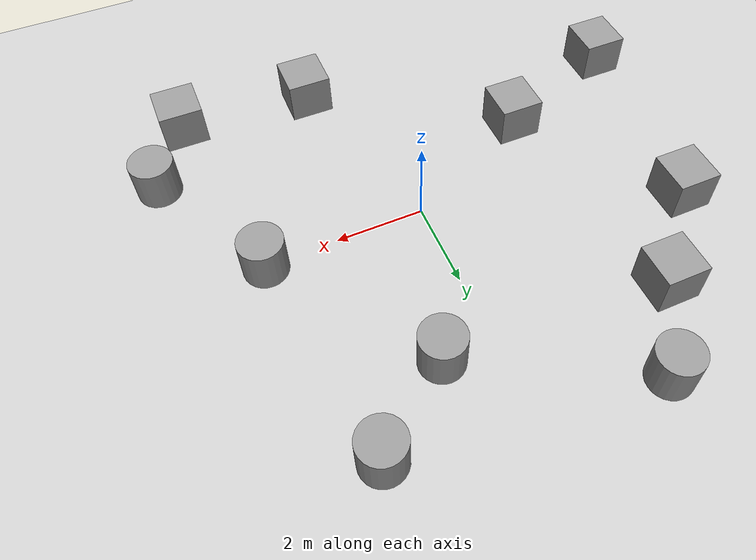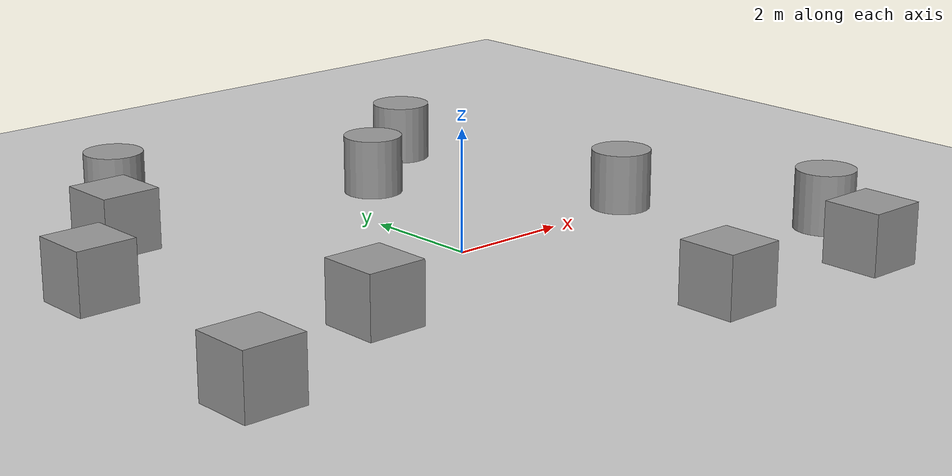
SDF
<sdf version="1.7">
 <world name="default">
  <light name="sun" type="directional">
   <pose>0 0 10 0 -0 0</pose>
   <diffuse>0.8 0.8 0.8 1</diffuse>
   <specular>0.2 0.2 0.2 1</specular>
   <attenuation>
    <range>1000</range>
    <constant>0.9</constant>
    <linear>0.01</linear>
    <quadratic>0.001</quadratic>
   </attenuation>
   <direction>-0.5 0.1 -0.9</direction>
   <spot><inner_angle>0</inner_angle><outer_angle>0</outer_angle><falloff>0</falloff></spot>
  </light>
  <model name="ground_plane">
   <static>1</static>
   <link name="link">
    <collision name="collision">
     <geometry><plane><normal>0 0 1</normal><size>100 100</size></plane></geometry>
     <surface><friction><ode><mu>100</mu><mu2>50</mu2></ode></friction></surface>
    </collision>
    <visual name="visual">
     <cast_shadows>0</cast_shadows>
     <geometry><plane><normal>0 0 1</normal><size>100 100</size></plane></geometry>
     <material>
      <script><uri>file://media/materials/scripts/gazebo.material</uri><name>Gazebo/Grey</name></script>
     </material>
    </visual>
   </link>
  </model>
  <gravity>0 0 -9.8</gravity>
  <magnetic_field>6e-06 2.3e-05 -4.2e-05</magnetic_field>
  <atmosphere type="adiabatic"/>
  <physics type="ode">
   <max_step_size>0.001</max_step_size>
   <real_time_factor>1</real_time_factor>
   <real_time_update_rate>1000</real_time_update_rate>
  </physics>
  <scene><ambient>0.4 0.4 0.4 1</ambient><background>0.7 0.7 0.7 1</background><shadows>1</shadows></scene>
  <audio><device>default</device></audio>
  <spherical_coordinates>
   <surface_model>EARTH_WGS84</surface_model>
   <latitude_deg>0</latitude_deg>
   <longitude_deg>0</longitude_deg>
   <elevation>0</elevation>
   <heading_deg>0</heading_deg>
  </spherical_coordinates>
  <model name="unit_box">
   <pose>1.20316 -4.40752 0.499995 -1e-05 -0 -0</pose>
   <link name="link">
    <inertial>
     <mass>1</mass>
     <inertia>
      <ixx>0.166667</ixx>
      <ixy>0</ixy>
      <ixz>0</ixz>
      <iyy>0.166667</iyy>
      <iyz>0</iyz>
      <izz>0.166667</izz>
     </inertia>
    </inertial>
    <collision name="collision"><geometry><box><size>1 1 1</size></box></geometry></collision>
    <visual name="visual">
     <geometry><box><size>1 1 1</size></box></geometry>
     <material>
      <script><name>Gazebo/Grey</name><uri>file://media/materials/scripts/gazebo.material</uri></script>
     </material>
    </visual>
   </link>
  </model>
  <model name="unit_box_0">
   <pose>4.27684 -4.60382 0.499995 0 1e-05 0</pose>
   <link name="link">
    <inertial>
     <mass>1</mass>
     <inertia>
      <ixx>0.166667</ixx>
      <ixy>0</ixy>
      <ixz>0</ixz>
      <iyy>0.166667</iyy>
      <iyz>0</iyz>
      <izz>0.166667</izz>
     </inertia>
    </inertial>
    <collision name="collision"><geometry><box><size>1 1 1</size></box></geometry></collision>
    <visual name="visual">
     <geometry><box><size>1 1 1</size></box></geometry>
     <material>
      <script><name>Gazebo/Grey</name><uri>file://media/materials/scripts/gazebo.material</uri></script>
     </material>
    </visual>
   </link>
  </model>
  <model name="unit_box_1">
   <pose>-3.09823 -1.6193 0.499995 -1e-05 -0 -0</pose>
   <link name="link">
    <inertial>
     <mass>1</mass>
     <inertia>
      <ixx>0.166667</ixx>
      <ixy>0</ixy>
      <ixz>0</ixz>
      <iyy>0.166667</iyy>
      <iyz>0</iyz>
      <izz>0.166667</izz>
     </inertia>
    </inertial>
    <collision name="collision"><geometry><box><size>1 1 1</size></box></geometry></collision>
    <visual name="visual">
     <geometry><box><size>1 1 1</size></box></geometry>
     <material>
      <script><name>Gazebo/Grey</name><uri>file://media/materials/scripts/gazebo.material</uri></script>
     </material>
    </visual>
   </link>
  </model>
  <model name="unit_box_2">
   <pose>-5.54063 1.91588 0.499995 0 1e-05 0</pose>
   <link name="link">
    <inertial>
     <mass>1</mass>
     <inertia>
      <ixx>0.166667</ixx>
      <ixy>0</ixy>
      <ixz>0</ixz>
      <iyy>0.166667</iyy>
      <iyz>0</iyz>
      <izz>0.166667</izz>
     </inertia>
    </inertial>
    <collision name="collision"><geometry><box><size>1 1 1</size></box></geometry></collision>
    <visual name="visual">
     <geometry><box><size>1 1 1</size></box></geometry>
     <material>
      <script><name>Gazebo/Grey</name><uri>file://media/materials/scripts/gazebo.material</uri></script>
     </material>
    </visual>
   </link>
  </model>
  <model name="unit_box_3">
   <pose>-3.86919 3.84455 0.499995 -1e-05 -0 -0</pose>
   <link name="link">
    <inertial>
     <mass>1</mass>
     <inertia>
      <ixx>0.166667</ixx>
      <ixy>0</ixy>
      <ixz>0</ixz>
      <iyy>0.166667</iyy>
      <iyz>0</iyz>
      <izz>0.166667</izz>
     </inertia>
    </inertial>
    <collision name="collision"><geometry><box><size>1 1 1</size></box></geometry></collision>
    <visual name="visual">
     <geometry><box><size>1 1 1</size></box></geometry>
     <material>
      <script><name>Gazebo/Grey</name><uri>file://media/materials/scripts/gazebo.material</uri></script>
     </material>
    </visual>
   </link>
  </model>
  <model name="unit_cylinder">
   <pose>1.14356 3.57171 0.499992 -3e-06 4e-06 0</pose>
   <link name="link">
    <inertial>
     <mass>1</mass>
     <inertia><ixx>0.145833</ixx><ixy>0</ixy><ixz>0</ixz><iyy>0.145833</iyy><iyz>0</iyz><izz>0.125</izz></inertia>
    </inertial>
    <collision name="collision">
     <geometry><cylinder><radius>0.5</radius><length>1</length></cylinder></geometry>
    </collision>
    <visual name="visual">
     <geometry><cylinder><radius>0.5</radius><length>1</length></cylinder></geometry>
     <material>
      <script><name>Gazebo/Grey</name><uri>file://media/materials/scripts/gazebo.material</uri></script>
     </material>
    </visual>
   </link>
  </model>
  <model name="unit_cylinder_0">
   <pose>3.63824 0.079429 0.499998 3e-06 -4e-06 0</pose>
   <link name="link">
    <inertial>
     <mass>1</mass>
     <inertia><ixx>0.145833</ixx><ixy>0</ixy><ixz>0</ixz><iyy>0.145833</iyy><iyz>0</iyz><izz>0.125</izz></inertia>
    </inertial>
    <collision name="collision">
     <geometry><cylinder><radius>0.5</radius><length>1</length></cylinder></geometry>
    </collision>
    <visual name="visual">
     <geometry><cylinder><radius>0.5</radius><length>1</length></cylinder></geometry>
     <material>
      <script><name>Gazebo/Grey</name><uri>file://media/materials/scripts/gazebo.material</uri></script>
     </material>
    </visual>
   </link>
  </model>
  <model name="unit_cylinder_1">
   <pose>5.22664 -2.97053 0.499992 -3e-06 -4e-06 -0</pose>
   <link name="link">
    <inertial>
     <mass>1</mass>
     <inertia><ixx>0.145833</ixx><ixy>0</ixy><ixz>0</ixz><iyy>0.145833</iyy><iyz>0</iyz><izz>0.125</izz></inertia>
    </inertial>
    <collision name="collision">
     <geometry><cylinder><radius>0.5</radius><length>1</length></cylinder></geometry>
    </collision>
    <visual name="visual">
     <geometry><cylinder><radius>0.5</radius><length>1</length></cylinder></geometry>
     <material>
      <script><name>Gazebo/Grey</name><uri>file://media/materials/scripts/gazebo.material</uri></script>
     </material>
    </visual>
   </link>
  </model>
  <model name="unit_box_4">
   <pose>-6.09611 -2.8057 0.499995 -1e-05 -0 -0</pose>
   <link name="link">
    <inertial>
     <mass>1</mass>
     <inertia>
      <ixx>0.166667</ixx>
      <ixy>0</ixy>
      <ixz>0</ixz>
      <iyy>0.166667</iyy>
      <iyz>0</iyz>
      <izz>0.166667</izz>
     </inertia>
    </inertial>
    <collision name="collision"><geometry><box><size>1 1 1</size></box></geometry></collision>
    <visual name="visual">
     <geometry><box><size>1 1 1</size></box></geometry>
     <material>
      <script><name>Gazebo/Grey</name><uri>file://media/materials/scripts/gazebo.material</uri></script>
     </material>
    </visual>
   </link>
  </model>
  <model name="unit_cylinder_2">
   <pose>-2.72967 5.64829 0.499997 3e-06 4e-06 -0</pose>
   <link name="link">
    <inertial>
     <mass>1</mass>
     <inertia><ixx>0.145833</ixx><ixy>0</ixy><ixz>0</ixz><iyy>0.145833</iyy><iyz>0</iyz><izz>0.125</izz></inertia>
    </inertial>
    <collision name="collision">
     <geometry><cylinder><radius>0.5</radius><length>1</length></cylinder></geometry>
    </collision>
    <visual name="visual">
     <geometry><cylinder><radius>0.5</radius><length>1</length></cylinder></geometry>
     <material>
      <script><name>Gazebo/Grey</name><uri>file://media/materials/scripts/gazebo.material</uri></script>
     </material>
    </visual>
   </link>
  </model>
  <model name="unit_cylinder_3">
   <pose>2.95473 4.97683 0.499993 -3e-06 -4e-06 -0</pose>
   <link name="link">
    <inertial>
     <mass>1</mass>
     <inertia><ixx>0.145833</ixx><ixy>0</ixy><ixz>0</ixz><iyy>0.145833</iyy><iyz>0</iyz><izz>0.125</izz></inertia>
    </inertial>
    <collision name="collision">
     <geometry><cylinder><radius>0.5</radius><length>1</length></cylinder></geometry>
    </collision>
    <visual name="visual">
     <geometry><cylinder><radius>0.5</radius><length>1</length></cylinder></geometry>
     <material>
      <script><name>Gazebo/Grey</name><uri>file://media/materials/scripts/gazebo.material</uri></script>
     </material>
    </visual>
   </link>
  </model>
 </world>
</sdf>
